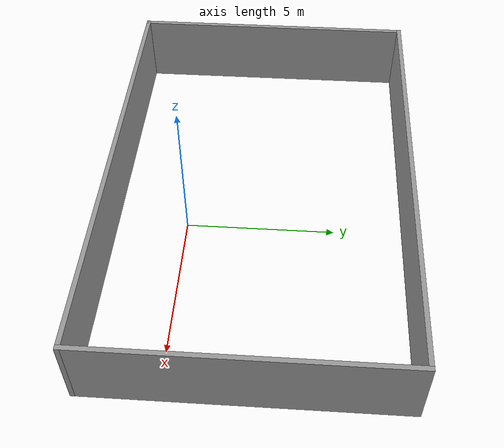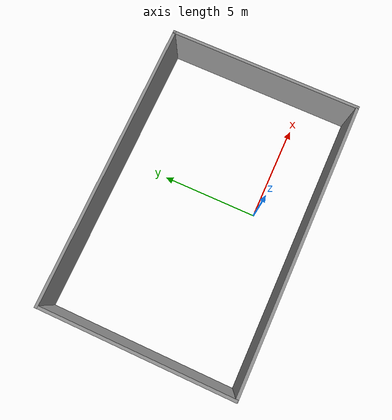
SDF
<?xml version='1.0'?>
<sdf version='1.7'>
  <model name='model_wall'>
    <pose>-0.902456 2.44841 0 0 -0 0</pose>
    <link name='Wall_0'>
      <collision name='Wall_0_Collision'>
        <geometry>
          <box>
            <size>10 0.15 2.5</size>
          </box>
        </geometry>
        <pose>0 0 1.25 0 -0 0</pose>
      </collision>
      <visual name='Wall_0_Visual'>
        <pose>0 0 1.25 0 -0 0</pose>
        <geometry>
          <box>
            <size>10 0.15 2.5</size>
          </box>
        </geometry>
        <material>
          <script>
            <uri>file://media/materials/scripts/gazebo.material</uri>
            <name>Gazebo/Grey</name>
          </script>
          <ambient>1 1 1 1</ambient>
        </material>
        <meta>
          <layer>0</layer>
        </meta>
      </visual>
      <pose>-7.425 0 0 0 -0 1.5708</pose>
    </link>
    <link name='Wall_4'>
      <collision name='Wall_4_Collision'>
        <geometry>
          <box>
            <size>15 0.15 2.5</size>
          </box>
        </geometry>
        <pose>0 0 1.25 0 -0 0</pose>
      </collision>
      <visual name='Wall_4_Visual'>
        <pose>0 0 1.25 0 -0 0</pose>
        <geometry>
          <box>
            <size>15 0.15 2.5</size>
          </box>
        </geometry>
        <material>
          <script>
            <uri>file://media/materials/scripts/gazebo.material</uri>
            <name>Gazebo/Grey</name>
          </script>
          <ambient>1 1 1 1</ambient>
        </material>
        <meta>
          <layer>0</layer>
        </meta>
      </visual>
      <pose>0 4.925 0 0 -0 0</pose>
    </link>
    <link name='Wall_7'>
      <collision name='Wall_7_Collision'>
        <geometry>
          <box>
            <size>10 0.15 2.5</size>
          </box>
        </geometry>
        <pose>0 0 1.25 0 -0 0</pose>
      </collision>
      <visual name='Wall_7_Visual'>
        <pose>0 0 1.25 0 -0 0</pose>
        <geometry>
          <box>
            <size>10 0.15 2.5</size>
          </box>
        </geometry>
        <material>
          <script>
            <uri>file://media/materials/scripts/gazebo.material</uri>
            <name>Gazebo/Grey</name>
          </script>
          <ambient>1 1 1 1</ambient>
        </material>
        <meta>
          <layer>0</layer>
        </meta>
      </visual>
      <pose>7.425 0 0 0 -0 -1.5708</pose>
    </link>
    <link name='Wall_8'>
      <collision name='Wall_8_Collision'>
        <geometry>
          <box>
            <size>15 0.15 2.5</size>
          </box>
        </geometry>
        <pose>0 0 1.25 0 -0 0</pose>
      </collision>
      <visual name='Wall_8_Visual'>
        <pose>0 0 1.25 0 -0 0</pose>
        <geometry>
          <box>
            <size>15 0.15 2.5</size>
          </box>
        </geometry>
        <material>
          <script>
            <uri>file://media/materials/scripts/gazebo.material</uri>
            <name>Gazebo/Grey</name>
          </script>
          <ambient>1 1 1 1</ambient>
        </material>
        <meta>
          <layer>0</layer>
        </meta>
      </visual>
      <pose>0 -4.925 0 0 -0 3.14159</pose>
    </link>
    <static>1</static>
  </model>
</sdf>
